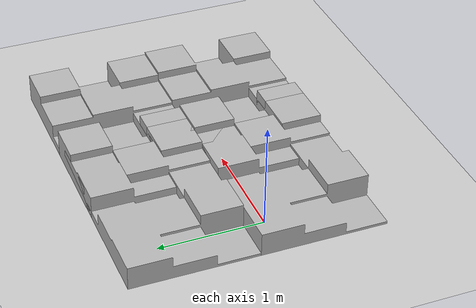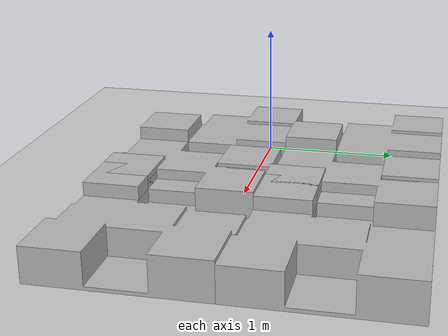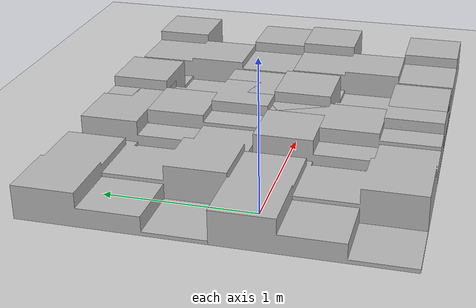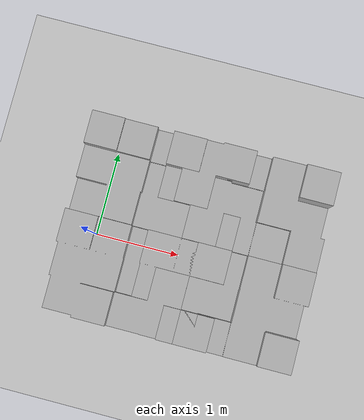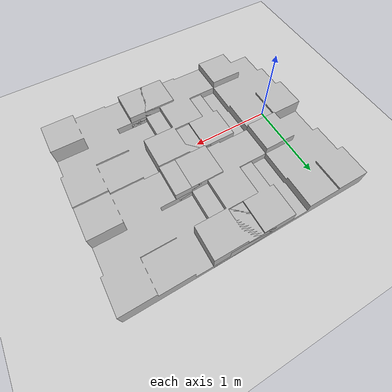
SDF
<?xml version="1.0" ?>
<sdf version="1.4">
  <world name="high_friction">
    <physics type='ode'>
      <gravity>0 0 -9.81</gravity>
      <ode>
        <solver>
          <type>quick</type>
          <iters>250</iters>
          <sor>1.</sor>
        </solver>
        <constraints>
          <cfm>0</cfm>
          <erp>0.2</erp>
          <contact_max_correcting_vel>100</contact_max_correcting_vel>
          <contact_surface_layer>0</contact_surface_layer>
        </constraints>
      </ode>
      <real_time_update_rate>1000</real_time_update_rate>
      <max_step_size>0.001</max_step_size>
      <real_time_factor>1</real_time_factor>
    </physics>
    <!-- A global light source -->
    <include>
      <uri>model://sun</uri>
    </include>
    <!-- A ground plane -->
    <model name="ground_plane">
        <static>true</static>
        <link name="link">
          <collision name="collision">
            <geometry>
              <plane>
                <normal>0 0 1</normal>
                <size>100 100</size>
              </plane>
            </geometry>
            <surface>
               <contact>
 				<ode>
                 <kp>15000</kp>
                 <kd>10.0</kd>
                 <max_vel>10000.0</max_vel>
                 <min_depth>0.0</min_depth>
               </ode>
             </contact>
              <friction>
                <ode>
                  <mu>100</mu>
                  <mu2>50</mu2>
                </ode>
              </friction>
            </surface>
          </collision>
          <visual name="visual">
            <cast_shadows>false</cast_shadows>
            <geometry>
              <plane>
                <normal>0 0 1</normal>
                <size>100 100</size>
              </plane>
            </geometry>
            <material>
              <script>
                <uri>file://media/materials/scripts/gazebo.material</uri>
                <name>Gazebo/Grey</name>
              </script>
            </material>
          </visual>
        </link>
	</model>
    <include>
		<uri>model://variable_blocks</uri>
		<name>variable_blocks</name>
		<pose>0 -1 0 0 0 0</pose>
    </include>
    <include>
		<uri>model://variable_blocks</uri>
		<name>variable_blocks</name>
		<pose>0 0.2 0 0 0 0</pose>
    </include>
        <include>
		<uri>model://variable_blocks</uri>
		<name>variable_blocks</name>
		<pose>1 0.2 0 0 0 0</pose>
    </include>
      <include>
		<uri>model://variable_blocks</uri>
		<name>variable_blocks</name>
		<pose>1 -1 0 0 0 0</pose>
    </include>
  </world>
</sdf>

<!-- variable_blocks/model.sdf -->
<sdf version="1.4">
	<model name="complex_stairs">
		<static>true</static>
		<link name="link">
			<pose>0 0 0 0 0 0</pose>
			<collision name="collision">
				<geometry>
					<mesh>
						<uri>model://variable_blocks/mesh/variable_blocks.dae</uri>
						<scale>1.0 1.0 1.0</scale>
					</mesh>
				</geometry>
			</collision>
			<visual name="visual">
				<geometry>
					<mesh>
						<uri>model://variable_blocks/mesh/variable_blocks.dae</uri>
						<scale>1.0 1.0 1.0</scale>
					</mesh>
				</geometry>
			</visual>
		</link>
	</model>
</sdf>
